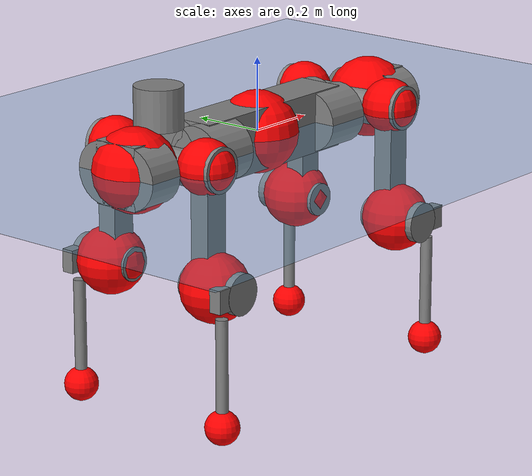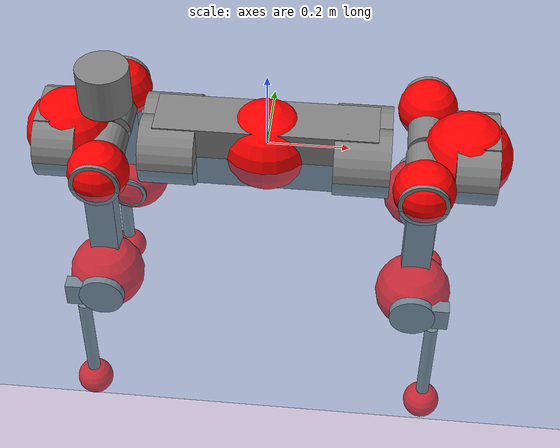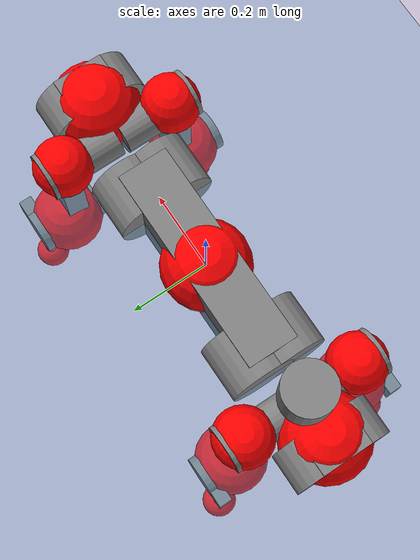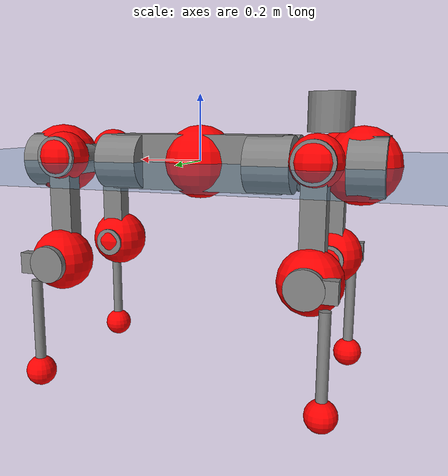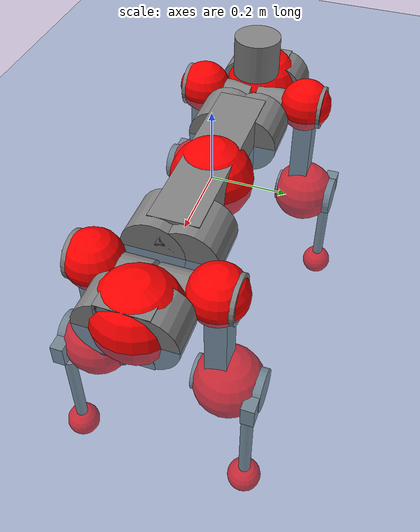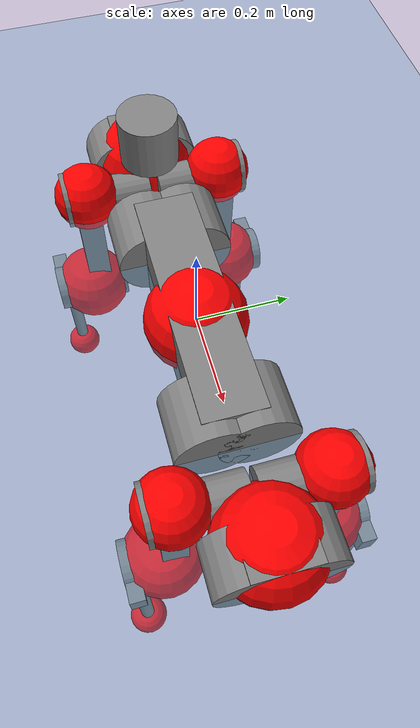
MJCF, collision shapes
<mujoco model="anymal_c">
  <compiler angle="radian" assetdir="assets" balanceinertia="true" inertiafromgeom="false"/>

  <option timestep="0.005" density="1.2" viscosity="2e-05"/>

  <size nkey="1"/>

  <visual>
    <quality shadowsize="8192"/>
    <map shadowclip="0.5"/>
  </visual>

  <default>
    <default class="/">
      <material specular="0" shininess="0.25"/>
      <geom contype="0" conaffinity="0" group="1" solref="-1000 -80"/>
      <site size="0.01 0.005 0.005" group="5"/>
      <general forcelimited="true" forcerange="-80 80" biastype="affine" gainprm="80" biasprm="0 -80 -2"/>
      <default class="anymal_c">
        <joint armature="0.01" damping="0.01" frictionloss="0.1"/>
        <default class="visual">
          <geom type="mesh" group="2"/>
          <default class="visual_zflip"/>
        </default>
        <default class="collision">
          <geom type="cylinder" group="3"/>
          <default class="foot">
            <geom size="0.03 0 0" type="sphere" condim="6" priority="1" friction="0.8 0.02 0.01" solimp="0.015 1 0.03"/>
          </default>
        </default>
      </default>
      <default class="reward_collision_sphere">
        <geom group="5" rgba="1 0 0 1"/>
      </default>
    </default>
  </default>

  <asset>
    <texture type="skybox" colorspace="auto" name="//unnamed_texture_0" builtin="gradient" rgb1="0.95 0.95 0.95" rgb2="0.95 0.95 0.95" width="100" height="600"/>
    <texture type="2d" colorspace="auto" name="texplane" builtin="checker" rgb1="0.345 0.575 0.748" rgb2="0.345 0.575 0.748" markrgb="1 1 1" width="512" height="512"/>
    <texture type="2d" colorspace="linear" name="base" file="base.png"/>
    <texture type="2d" colorspace="linear" name="top_shell" file="top_shell.png"/>
    <texture type="2d" colorspace="linear" name="bottom_shell" file="bottom_shell.png"/>
    <texture type="2d" colorspace="linear" name="remote" file="remote.png"/>
    <texture type="2d" colorspace="linear" name="hatch" file="hatch.png"/>
    <texture type="2d" colorspace="linear" name="handle" file="handle.png"/>
    <texture type="2d" colorspace="linear" name="face" file="face.png"/>
    <texture type="2d" colorspace="linear" name="battery" file="battery.png"/>
    <texture type="2d" colorspace="linear" name="lidar_cage" file="lidar_cage.png"/>
    <texture type="2d" colorspace="linear" name="depth_camera" file="depth_camera.png"/>
    <texture type="2d" colorspace="linear" name="wide_angle_camera" file="wide_angle_camera.png"/>
    <texture type="2d" colorspace="linear" name="lidar" file="lidar.png"/>
    <texture type="2d" colorspace="linear" name="drive" file="drive.png"/>
    <texture type="2d" colorspace="linear" name="hip_l" file="hip_l.png"/>
    <texture type="2d" colorspace="linear" name="shank_l" file="shank_l.png"/>
    <texture type="2d" colorspace="linear" name="foot" file="foot.png"/>
    <texture type="2d" colorspace="linear" name="thigh" file="thigh.png"/>
    <texture type="2d" colorspace="linear" name="shank_r" file="shank_r.png"/>
    <texture type="2d" colorspace="linear" name="hip_r" file="hip_r.png"/>
    <material name="MatPlane" class="/" texture="texplane" texuniform="true" texrepeat="2 2" specular="0.9" shininess="0.5"/>
    <material name="black_plastic" class="/" rgba="0.007 0.007 0.007 1"/>
    <material name="green" class="/" rgba="0.052 0.178 0.033 1"/>
    <material name="red" class="/" rgba="0.178 0.006 0.005 1"/>
    <material name="yellow" class="/" rgba="0.178 0.119 0.006 1"/>
    <material name="lwl" class="/" rgba="0.8 0.8 0.8 1"/>
    <material name="base" class="/" texture="base"/>
    <material name="top_shell" class="/" texture="top_shell"/>
    <material name="bottom_shell" class="/" texture="bottom_shell"/>
    <material name="hip_l" class="/" texture="hip_l"/>
    <material name="thigh" class="/" texture="thigh"/>
    <material name="shank_l" class="/" texture="shank_l"/>
    <material name="foot" class="/" texture="foot"/>
    <material name="hip_r" class="/" texture="hip_r"/>
    <material name="shank" class="/" texture="shank_r"/>
    <material name="hatch" class="/" texture="hatch"/>
    <material name="remote" class="/" texture="remote"/>
    <material name="handle" class="/" texture="handle"/>
    <material name="face" class="/" texture="face"/>
    <material name="depth_camera" class="/" texture="depth_camera"/>
    <material name="wide_angle_camera" class="/" texture="wide_angle_camera"/>
    <material name="battery" class="/" texture="battery"/>
    <material name="lidar_cage" class="/" texture="lidar_cage"/>
    <material name="lidar" class="/" texture="lidar"/>
    <material name="drive" class="/" texture="drive"/>
    <mesh name="base_0" class="/" file="base_0.obj"/>
    <mesh name="base_1" class="/" file="base_1.obj"/>
    <mesh name="base_2" class="/" file="base_2.obj"/>
    <mesh name="base_3" class="/" file="base_3.obj"/>
    <mesh name="base_4" class="/" file="base_4.obj"/>
    <mesh name="base_5" class="/" file="base_5.obj"/>
    <mesh name="top_shell" class="/" file="top_shell.obj"/>
    <mesh name="bottom_shell" class="/" file="bottom_shell.obj"/>
    <mesh name="remote" class="/" file="remote.obj"/>
    <mesh name="handle" class="/" file="handle.obj"/>
    <mesh name="face" class="/" file="face.obj"/>
    <mesh name="wide_angle_camera" class="/" file="wide_angle_camera.obj"/>
    <mesh name="depth_camera" class="/" file="depth_camera.obj"/>
    <mesh name="battery" class="/" file="battery.obj"/>
    <mesh name="lidar_cage" class="/" file="lidar_cage.obj"/>
    <mesh name="lidar" class="/" file="lidar.obj"/>
    <mesh name="drive" class="/" file="drive.obj"/>
    <mesh name="hip_l" class="/" file="hip_l.obj"/>
    <mesh name="thigh" class="/" file="thigh.obj"/>
    <mesh name="shank_l" class="/" file="shank_l.obj"/>
    <mesh name="foot" class="/" file="foot.obj"/>
    <mesh name="hip_r" class="/" file="hip_r.obj"/>
    <mesh name="hatch" class="/" file="hatch.obj"/>
    <mesh name="shank_r" class="/" file="shank_r.obj"/>
  </asset>

  <worldbody>
    <geom name="floor" class="/" size="100 100 0.125" type="plane" group="0" material="MatPlane"/>
    <light name="toplight_shadow" class="/" pos="0 0 5" dir="0.0990148 0.0990148 -0.990148" type="directional" ambient="0.04 0.04 0.04" diffuse="0.55 0.55 0.55" specular="0.12 0.12 0.12"/>
    <light name="toplight_fill" class="/" pos="0 0 5" dir="0.0990148 0.0990148 -0.990148" type="directional" castshadow="false" ambient="0.04 0.04 0.04" diffuse="0.3 0.3 0.3" specular="0.08 0.08 0.08"/>
    <body name="trunk" childclass="anymal_c" pos="-0.000456574 -0.000489599 -0.00222822" quat="1 4.60019e-05 -2.91435e-05 -3.79967e-06">
      <inertial pos="0.000878484 -0.000846803 0.0570799" quat="0.491817 0.505841 0.503956 0.498266" mass="15.8895" diaginertia="0.96245 0.0521299 0.369438"/>
      <joint name="//unnamed_joint_0" type="free" armature="0" damping="0" frictionloss="0"/>
      <geom name="//unnamed_geom_1" class="visual" material="green" mesh="base_0"/>
      <geom name="//unnamed_geom_2" class="visual" material="yellow" mesh="base_1"/>
      <geom name="//unnamed_geom_3" class="visual" material="red" mesh="base_2"/>
      <geom name="//unnamed_geom_4" class="visual" material="black_plastic" mesh="base_3"/>
      <geom name="//unnamed_geom_5" class="visual" material="lwl" mesh="base_4"/>
      <geom name="//unnamed_geom_6" class="visual" material="base" mesh="base_5"/>
      <geom name="trunk_1" class="collision" size="0.270038 0.0651815 0.0838048" type="box"/>
      <geom name="trunk_2" class="collision" size="0.0838048 0.0675094" pos="0.233899 0.0424727 0" quat="0.707107 0 0.707107 0"/>
      <geom name="trunk_3" class="collision" size="0.0838048 0.0675094" pos="-0.233899 0.0424727 0" quat="0.707107 0 0.707107 0"/>
      <geom name="trunk_4" class="collision" size="0.0838048 0.0675094" pos="0.233899 -0.0424727 0" quat="0.707107 0 0.707107 0"/>
      <geom name="trunk_5" class="collision" size="0.0838048 0.0675094" pos="-0.233899 -0.0424727 0" quat="0.707107 0 0.707107 0"/>
      <geom name="//unnamed_geom_12" class="visual" material="top_shell" mesh="top_shell"/>
      <geom name="//unnamed_geom_13" class="visual" material="bottom_shell" mesh="bottom_shell"/>
      <geom name="//unnamed_geom_14" class="visual" material="remote" mesh="remote"/>
      <geom name="//unnamed_geom_15" class="visual" material="handle" mesh="handle"/>
      <geom name="//unnamed_geom_16" class="visual" pos="0.445752 0 0" quat="1 0 0 0" material="face" mesh="face"/>
      <geom name="trunk_6" class="collision" size="0.051214 0.0651815 0.0838048" pos="0.504898 0 0" type="box"/>
      <geom name="//unnamed_geom_18" class="collision" size="0.0838048 0.051214" pos="0.504898 0.0424727 0" quat="0.707107 0 0.707107 0"/>
      <geom name="//unnamed_geom_19" class="collision" size="0.0838048 0.051214" pos="0.504898 -0.0424727 0" quat="0.707107 0 0.707107 0"/>
      <geom name="//unnamed_geom_20" class="visual" pos="0.496458 0 -0.0327244" quat="0.965926 0 0.258819 0" material="depth_camera" mesh="depth_camera"/>
      <geom name="//unnamed_geom_21" class="visual" pos="0.551678 0 0.0166368" material="wide_angle_camera" mesh="wide_angle_camera"/>
      <geom name="//unnamed_geom_22" class="visual_zflip" pos="-0.445752 0 0" quat="0 0 0 1" material="face" mesh="face"/>
      <geom name="trunk_7" class="collision" size="0.051214 0.0651815 0.0838048" pos="-0.504898 0 0" quat="0 0 0 1" type="box"/>
      <geom name="//unnamed_geom_24" class="collision" size="0.0838048 0.051214" pos="-0.504898 -0.0424727 0" quat="0 -0.707107 0 0.707107"/>
      <geom name="//unnamed_geom_25" class="collision" size="0.0838048 0.051214" pos="-0.504898 0.0424727 0" quat="0 -0.707107 0 0.707107"/>
      <geom name="//unnamed_geom_26" class="visual" pos="-0.496458 0 -0.0327244" quat="0 -0.258819 0 0.965926" material="depth_camera" mesh="depth_camera"/>
      <geom name="//unnamed_geom_27" class="visual_zflip" pos="-0.551678 0 0.0166368" quat="0 0 0 1" material="wide_angle_camera" mesh="wide_angle_camera"/>
      <geom name="//unnamed_geom_28" class="visual" material="battery" mesh="battery"/>
      <geom name="//unnamed_geom_29" class="visual" pos="0 0.0402442 0.0320113" quat="0.683013 -0.183013 0.183013 0.683013" material="depth_camera" mesh="depth_camera"/>
      <geom name="//unnamed_geom_30" class="visual" pos="0 -0.0402442 0.0320113" quat="0.683013 0.183013 0.183013 -0.683013" material="depth_camera" mesh="depth_camera"/>
      <geom name="//unnamed_geom_31" class="visual" pos="-0.391444 0 0.0816837" quat="1 0 0 0" material="lidar_cage" mesh="lidar_cage"/>
      <geom name="trunk_8" class="collision" size="0.0651815 0.0558698" pos="-0.391444 0 0.148364"/>
      <geom name="//unnamed_geom_33" class="visual" pos="-0.391444 -0.000184117 0.158033" quat="0.707107 0 0 -0.707107" material="lidar" mesh="lidar"/>
      <geom name="//unnamed_geom_34" class="visual" pos="0.322511 0.0632815 -8.70424e-09" quat="0.258819 0.965926 0 0" material="drive" mesh="drive"/>
      <geom name="//unnamed_geom_35" class="visual" pos="0.322511 -0.0632815 8.70424e-09" quat="0.258819 -0.965926 0 0" material="drive" mesh="drive"/>
      <geom name="//unnamed_geom_36" class="visual" pos="-0.322511 0.0632815 8.70424e-09" quat="0 0 0.965926 -0.258819" material="drive" mesh="drive"/>
      <geom name="//unnamed_geom_37" class="visual" pos="-0.322511 -0.0632815 -8.70424e-09" quat="0 0 -0.965926 -0.258819" material="drive" mesh="drive"/>
      <geom name="//unnamed_geom_38" class="visual" pos="0.124746 0 0.0811281" quat="1 0 0 0" material="hatch" mesh="hatch"/>
      <geom name="//unnamed_geom_39" class="reward_collision_sphere" size="0.11174"/>
      <geom name="//unnamed_geom_40" class="reward_collision_sphere" size="0.11174" pos="0.483928 0 0"/>
      <geom name="//unnamed_geom_41" class="reward_collision_sphere" size="0.11174" pos="-0.483928 0 0"/>
      <site name="imu" pos="0.270991 0.00337477 0.0555584" size="0.00931164"/>
      <camera name="track" pos="0 -1.21351 0" quat="0.707107 0.707107 0 0" mode="trackcom"/>
      <camera name="ego_camera" pos="0.483928 0 -0.0444537" quat="-0.5 -0.5 0.5 0.5"/>
      <body name="LF_HIP" pos="0.323705 0.061843 4.40968e-05" quat="0.25752 0.966273 0.000103074 0.000569796">
        <inertial pos="0.0616217 -0.0117961 -0.00818713" quat="-0.118483 0.71666 -0.136597 0.673573" mass="2.26059" diaginertia="0.00850966 0.000412391 0.00581794"/>
        <joint name="LF_HAA" pos="0 0 0" axis="0.999938 -0.00592945 0.00947146" range="-0.704837 0.542263" armature="0.00930701" damping="0.0115934" frictionloss="0.0883389"/>
        <geom name="//unnamed_geom_42" class="visual" pos="0 -0.000512031 8.41007e-05" quat="0.258819 -0.965926 0 0" material="hip_l" mesh="hip_l"/>
        <geom name="//unnamed_geom_43" class="visual" pos="0.0644162 -0.0720628 -0.0453377" quat="0.183013 -0.683013 0.683013 0.183013" material="drive" mesh="drive"/>
        <geom name="//unnamed_geom_44" class="collision" size="0.0465582 0.0651815" pos="0.0644162 -0.00725664 -0.00767383" quat="-0.353553 -0.612372 0.612372 -0.353553"/>
        <body name="LF_THIGH" pos="0.0652234 -0.0454778 -0.0462052" quat="0.183531 -0.682844 0.683024 0.183082">
          <inertial pos="0.0362769 -0.000496543 -0.27254" quat="0.99359 0.00404461 -0.0763947 0.0832267" mass="2.53249" diaginertia="0.0428149 0.00243076 0.0069412"/>
          <joint name="LF_HFE" pos="0 0 0" axis="0.999999 -0.00117578 -0.000275046" stiffness="0.00871119" range="-3.18618 3.16013" armature="0.00962392" damping="0" frictionloss="0.0892948"/>
          <geom name="//unnamed_geom_45" class="visual" pos="0.00932416 1.46927e-05 0" quat="0.707107 0 0 -0.707107" material="thigh" mesh="thigh"/>
          <geom name="//unnamed_geom_46" class="collision" size="0.0605257 0.0372466" pos="0.0430158 0 0" quat="0.5 0.5 -0.5 -0.5"/>
          <geom name="//unnamed_geom_47" class="collision" size="0.0349187 0.0279349 0.131587" pos="0.0322619 0 -0.157048" quat="0.707107 0 0 -0.707107" type="box"/>
          <geom name="//unnamed_geom_48" class="visual" pos="0.107862 0 -0.316733" quat="1 0 0 0" material="drive" mesh="drive"/>
          <geom name="//unnamed_geom_49" class="collision" size="0.0465582 0.0651815" pos="0.0325845 0 -0.316733" quat="0.707107 0 0.707107 0"/>
          <geom name="//unnamed_geom_50" class="reward_collision_sphere" size="0.0744931" pos="0.0268849 0 0"/>
          <body name="LF_SHANK" pos="0.109696 -0.00160819 -0.316266" quat="1 -0.000564866 0.00050993 -0.000135378">
            <inertial pos="0.00439379 -0.0370119 -0.0913589" quat="0.992521 -0.119137 0.00771928 -0.0254705" mass="0.464434" diaginertia="0.0140955 0.000759295 0.00179936"/>
            <joint name="LF_KFE" pos="0 0 0" axis="0.999937 0.0101499 -0.00478535" range="-3.18764 3.1901" armature="0.0106023" damping="0.00186482" frictionloss="0.10478"/>
            <geom name="//unnamed_geom_51" class="visual" pos="0.0030404 0.0162116 0" quat="0.707107 0 0 -0.707107" material="shank_l" mesh="shank_l"/>
            <geom name="LF_kfe_act" class="collision" size="0.0558698 0.0186233" pos="0.0215079 0 0" quat="0.5 0.5 -0.5 -0.5"/>
            <geom name="//unnamed_geom_53" class="collision" size="0.053541 0.0314268 0.0176921" pos="0.0215079 -0.0348877 0" quat="0.5 0.5 -0.5 -0.5" type="box"/>
            <geom name="//unnamed_geom_54" class="visual" pos="0.0140332 -0.0481396 -0.375601" quat="0.382683 0 0 -0.92388" material="foot" mesh="foot"/>
            <geom name="LF_calf" class="collision" size="0.0162954 0.131529" pos="0.0140339 -0.0533639 -0.1878" quat="0.707107 0 0 -0.707107"/>
            <geom name="LF_foot" class="foot" size="0.0248776" pos="0.0140339 -0.0533639 -0.350595" quat="0.707107 0 0 -0.707107"/>
            <geom name="//unnamed_geom_57" class="reward_collision_sphere" size="0.0931164" pos="-0.0537698 0 0"/>
            <geom name="//unnamed_geom_58" class="reward_collision_sphere" size="0.0465582" pos="0.0140339 -0.0533639 -0.350595"/>
            <site name="LF_foot" class="foot" pos="0.0140339 -0.0533639 -0.350595" quat="0.707107 0 0 -0.707107" size="0.00931164"/>
          </body>
        </body>
      </body>
      <body name="RF_HIP" pos="0.320542 -0.0617644 -0.00113834" quat="0.259195 -0.965825 0.000829583 0.00065335">
        <inertial pos="0.0619608 0.010217 -0.00997297" quat="0.136516 0.679847 0.125256 0.709565" mass="2.26347" diaginertia="0.008393 0.000431521 0.00576637"/>
        <joint name="RF_HAA" pos="0 0 0" axis="0.999889 -0.00850483 -0.012219" range="-0.50154 0.734924" armature="0.00895326" damping="0.0124168" frictionloss="0.0896725"/>
        <geom name="//unnamed_geom_59" class="visual" pos="0 0.000512027 8.41005e-05" quat="0.258819 0.965926 0 0" material="hip_r" mesh="hip_r"/>
        <geom name="//unnamed_geom_60" class="visual" pos="0.0644162 0.0720628 -0.0453377" quat="0.183013 0.683013 0.683013 -0.183013" material="drive" mesh="drive"/>
        <geom name="//unnamed_geom_61" class="collision" size="0.0465582 0.0651815" pos="0.0644162 0.00725664 -0.00767383" quat="-0.353553 0.612372 0.612372 0.353553"/>
        <body name="RF_THIGH" pos="0.0620464 0.0440062 -0.0494057" quat="0.183791 0.682817 0.682797 -0.183763">
          <inertial pos="0.0328041 0.000558038 -0.272481" quat="0.992309 -0.00877485 -0.0833645 0.0910802" mass="2.42106" diaginertia="0.0423246 0.00247789 0.00717591"/>
          <joint name="RF_HFE" pos="0 0 0" axis="0.999993 -0.000658022 -0.00360974" stiffness="0.00891848" range="-3.15349 3.18847" armature="0.0094529" damping="0" frictionloss="0.0863205"/>
          <geom name="//unnamed_geom_62" class="visual" pos="0.00932416 1.46927e-05 0" quat="0.707107 0 0 -0.707107" material="thigh" mesh="thigh"/>
          <geom name="//unnamed_geom_63" class="collision" size="0.0605257 0.0372466" pos="0.0430158 0 0" quat="0.5 0.5 0.5 0.5"/>
          <geom name="//unnamed_geom_64" class="collision" size="0.0349187 0.0279349 0.131587" pos="0.0322619 0 -0.157048" quat="0.707107 0 0 0.707107" type="box"/>
          <geom name="//unnamed_geom_65" class="visual" pos="0.107862 0 -0.316733" quat="1 0 0 0" material="drive" mesh="drive"/>
          <geom name="//unnamed_geom_66" class="collision" size="0.0465582 0.0651815" pos="0.0325845 0 -0.316733" quat="0.707107 0 0.707107 0"/>
          <geom name="//unnamed_geom_67" class="reward_collision_sphere" size="0.0744931" pos="0.0268849 0 0"/>
          <body name="RF_SHANK" pos="0.107972 3.91874e-06 -0.313648" quat="1 0.000315351 -6.16951e-05 -0.00035327">
            <inertial pos="0.00632742 0.0381154 -0.0892539" quat="0.99131 0.128961 -0.00329272 0.0257386" mass="0.469821" diaginertia="0.0146423 0.000741884 0.00186849"/>
            <joint name="RF_KFE" pos="0 0 0" axis="0.999856 0.0145198 -0.00878048" range="-3.18866 3.18683" armature="0.00824508" damping="0.00835317" frictionloss="0.0942072"/>
            <geom name="//unnamed_geom_68" class="visual" pos="0.00304039 -0.0162116 0" quat="0.707107 0 0 0.707107" material="shank" mesh="shank_r"/>
            <geom name="RF_kfe_act" class="collision" size="0.0558698 0.0186233" pos="0.0215079 0 0" quat="0.5 0.5 0.5 0.5"/>
            <geom name="//unnamed_geom_70" class="collision" size="0.053541 0.0314268 0.0176921" pos="0.0215079 0.0348877 0" quat="0.5 0.5 0.5 0.5" type="box"/>
            <geom name="//unnamed_geom_71" class="visual" pos="0.0140347 0.0481396 -0.375601" quat="0.382683 0 0 0.92388" material="foot" mesh="foot"/>
            <geom name="RF_calf" class="collision" size="0.0162954 0.131529" pos="0.0140339 0.0533639 -0.1878" quat="0.707107 0 0 0.707107"/>
            <geom name="RF_foot" class="foot" size="0.0295681" pos="0.0140339 0.0533639 -0.350595" quat="0.707107 0 0 0.707107"/>
            <geom name="//unnamed_geom_74" class="reward_collision_sphere" size="0.0931164" pos="-0.0537698 0 0"/>
            <geom name="//unnamed_geom_75" class="reward_collision_sphere" size="0.0465582" pos="0.0140339 0.0533639 -0.350595"/>
            <site name="RF_foot" class="foot" pos="0.0140339 0.0533639 -0.350595" quat="0.707107 0 0 0.707107" size="0.00931164"/>
          </body>
        </body>
      </body>
      <body name="LH_HIP" pos="-0.321915 0.0661077 -0.00040879" quat="-0.000720418 -0.000599722 0.965785 -0.259343">
        <inertial pos="0.0638474 0.00962319 -0.0102343" quat="0.137421 0.674401 0.117652 0.715861" mass="2.26582" diaginertia="0.00804689 0.000397154 0.00544104"/>
        <joint name="LH_HAA" pos="0 0 0" axis="0.999895 0.0133778 0.0056036" range="-0.44326 0.750843" armature="0.00896924" damping="0" frictionloss="0.0977466"/>
        <geom name="//unnamed_geom_76" class="visual" pos="0 0.000512027 8.41005e-05" quat="-0.258819 -0.965926 0 0" material="hip_r" mesh="hip_r"/>
        <geom name="//unnamed_geom_77" class="visual" pos="0.0644162 0.0720628 -0.0453377" quat="0.183013 0.683013 0.683013 -0.183013" material="drive" mesh="drive"/>
        <geom name="//unnamed_geom_78" class="collision" size="0.0465582 0.0651815" pos="0.0644162 0.00725664 -0.00767383" quat="-0.353553 0.612372 0.612372 0.353553"/>
        <body name="LH_THIGH" pos="0.0615529 0.0452479 -0.0490423" quat="0.183068 0.683089 0.682918 -0.183025">
          <inertial pos="0.0331249 0.00142732 -0.273404" quat="0.99245 -0.00415228 -0.0829838 0.0902234" mass="2.4867" diaginertia="0.0434681 0.00237777 0.00728926"/>
          <joint name="LH_HFE" pos="0 0 0" axis="0.999984 -0.0055808 -0.000174895" stiffness="0.00874923" range="-3.13977 3.14261" armature="0.00800687" damping="0" frictionloss="0.104913"/>
          <geom name="//unnamed_geom_79" class="visual" pos="0.00932416 1.46927e-05 0" quat="0.707107 0 0 -0.707107" material="thigh" mesh="thigh"/>
          <geom name="//unnamed_geom_80" class="collision" size="0.0605257 0.0372466" pos="0.0430158 0 0" quat="0.5 0.5 -0.5 -0.5"/>
          <geom name="//unnamed_geom_81" class="collision" size="0.0349187 0.0279349 0.131587" pos="0.0322619 0 -0.157048" quat="0.707107 0 0 -0.707107" type="box"/>
          <geom name="//unnamed_geom_82" class="visual" pos="0.107862 0 -0.316733" quat="1 0 0 0" material="drive" mesh="drive"/>
          <geom name="//unnamed_geom_83" class="collision" size="0.0465582 0.0651815" pos="0.0325845 0 -0.316733" quat="0.707107 0 0.707107 0"/>
          <geom name="//unnamed_geom_84" class="reward_collision_sphere" size="0.0744931" pos="0.0268849 0 0"/>
          <body name="LH_SHANK" pos="0.105333 -0.001131 -0.31981" quat="0.999999 -0.000408795 0.000394573 -0.0014044">
            <inertial pos="0.00593249 0.0373837 -0.0892195" quat="0.992377 0.121257 0.00104823 0.0219971" mass="0.475352" diaginertia="0.0144787 0.000760555 0.00191603"/>
            <joint name="LH_KFE" pos="0 0 0" axis="0.999914 0.0130378 0.00156708" range="-3.13892 3.13441" armature="0.00856218" damping="0.0142482" frictionloss="0.104398"/>
            <geom name="//unnamed_geom_85" class="visual" pos="0.00304039 -0.0162116 0" quat="-0.707107 0 0 -0.707107" material="shank" mesh="shank_r"/>
            <geom name="LH_kfe_act" class="collision" size="0.0558698 0.0186233" pos="0.0215079 0 0" quat="0.5 0.5 -0.5 -0.5"/>
            <geom name="//unnamed_geom_87" class="collision" size="0.053541 0.0314268 0.0176921" pos="0.0215079 0.0348877 0" quat="0.5 0.5 -0.5 -0.5" type="box"/>
            <geom name="//unnamed_geom_88" class="visual" pos="0.0140347 0.0481396 -0.375601" quat="-0.382683 0 0 -0.92388" material="foot" mesh="foot"/>
            <geom name="LH_calf" class="collision" size="0.0162954 0.131529" pos="0.0140339 0.0533639 -0.1878" quat="0.707107 0 0 -0.707107"/>
            <geom name="LH_foot" class="foot" size="0.0266303" pos="0.0140339 0.0533639 -0.350595" quat="0.707107 0 0 -0.707107"/>
            <geom name="//unnamed_geom_91" class="reward_collision_sphere" size="0.0931164" pos="-0.0537698 0 0"/>
            <geom name="//unnamed_geom_92" class="reward_collision_sphere" size="0.0465582" pos="0.0140339 0.0533639 -0.350595"/>
            <site name="LH_foot" class="foot" pos="0.0140339 0.0533639 -0.350595" quat="0.707107 0 0 -0.707107" size="0.00931164"/>
          </body>
        </body>
      </body>
      <body name="RH_HIP" pos="-0.323309 -0.0641475 -0.00211911" quat="-0.000623404 3.74139e-05 -0.966012 -0.258495">
        <inertial pos="0.0606191 -0.00872438 -0.00831531" quat="-0.133482 0.703389 -0.137065 0.684572" mass="2.15938" diaginertia="0.00812347 0.000391728 0.00540202"/>
        <joint name="RH_HAA" pos="0 0 0" axis="1 -3.6356e-05 -0.000669221" range="-0.746975 0.481645" armature="0.00920875" damping="0" frictionloss="0.0945028"/>
        <geom name="//unnamed_geom_93" class="visual" pos="0 -0.000512031 8.41007e-05" quat="-0.258819 0.965926 0 0" material="hip_l" mesh="hip_l"/>
        <geom name="//unnamed_geom_94" class="visual" pos="0.0644162 -0.0720628 -0.0453377" quat="-0.183013 0.683013 -0.683013 -0.183013" material="drive" mesh="drive"/>
        <geom name="//unnamed_geom_95" class="collision" size="0.0465582 0.0651815" pos="0.0644162 -0.00725664 -0.00767383" quat="0.353553 0.612372 -0.612372 0.353553"/>
        <body name="RH_THIGH" pos="0.0636901 -0.0472526 -0.0470242" quat="-0.182872 0.682545 -0.683403 -0.183442">
          <inertial pos="0.0355699 -0.00178949 -0.272135" quat="0.993132 -0.00445013 -0.0816958 0.0836292" mass="2.5252" diaginertia="0.0434965 0.00246175 0.00732291"/>
          <joint name="RH_HFE" pos="0 0 0" axis="0.999994 0.000175639 -0.00356103" range="-3.15551 3.15047" armature="0.00802864" damping="0" frictionloss="0.0937381"/>
          <geom name="//unnamed_geom_96" class="visual" pos="0.00932416 1.46927e-05 0" quat="0.707107 0 0 -0.707107" material="thigh" mesh="thigh"/>
          <geom name="//unnamed_geom_97" class="collision" size="0.0605257 0.0372466" pos="0.0430158 0 0" quat="0.5 0.5 0.5 0.5"/>
          <geom name="//unnamed_geom_98" class="collision" size="0.0349187 0.0279349 0.131587" pos="0.0322619 0 -0.157048" quat="0.707107 0 0 0.707107" type="box"/>
          <geom name="//unnamed_geom_99" class="visual" pos="0.107862 0 -0.316733" quat="1 0 0 0" material="drive" mesh="drive"/>
          <geom name="//unnamed_geom_100" class="collision" size="0.0465582 0.0651815" pos="0.0325845 0 -0.316733" quat="0.707107 0 0.707107 0"/>
          <geom name="//unnamed_geom_101" class="reward_collision_sphere" size="0.0744931" pos="0.0268849 0 0"/>
          <body name="RH_SHANK" pos="0.107675 -0.00100328 -0.314235" quat="0.999999 -0.000420043 -0.000455319 0.00128077">
            <inertial pos="0.00341897 -0.0370939 -0.09048" quat="0.992475 -0.118515 -0.00310945 -0.0306274" mass="0.471312" diaginertia="0.0140128 0.000766705 0.00185933"/>
            <joint name="RH_KFE" pos="0 0 0" axis="0.999996 -0.00280639 -0.000432315" stiffness="0.00500942" range="-3.13451 3.08847" armature="0.00945321" damping="0.0177026" frictionloss="0.0930834"/>
            <geom name="//unnamed_geom_102" class="visual" pos="0.0030404 0.0162116 0" quat="0.707107 0 0 -0.707107" material="shank_l" mesh="shank_l"/>
            <geom name="RH_kfe_act" class="collision" size="0.0558698 0.0186233" pos="0.0215079 0 0" quat="0.5 0.5 0.5 0.5"/>
            <geom name="//unnamed_geom_104" class="collision" size="0.053541 0.0314268 0.0176921" pos="0.0215079 -0.0348877 0" quat="0.5 0.5 0.5 0.5" type="box"/>
            <geom name="//unnamed_geom_105" class="visual" pos="0.0140332 -0.0481396 -0.375601" quat="0.382683 0 0 -0.92388" material="foot" mesh="foot"/>
            <geom name="RH_calf" class="collision" size="0.0162954 0.131529" pos="0.0140339 -0.0533639 -0.1878" quat="0.707107 0 0 0.707107"/>
            <geom name="RH_foot" class="foot" size="0.0247392" pos="0.0140339 -0.0533639 -0.350595" quat="0.707107 0 0 0.707107"/>
            <geom name="//unnamed_geom_108" class="reward_collision_sphere" size="0.0931164" pos="-0.0537698 0 0"/>
            <geom name="//unnamed_geom_109" class="reward_collision_sphere" size="0.0465582" pos="0.0140339 -0.0533639 -0.350595"/>
            <site name="RH_foot" class="foot" pos="0.0140339 -0.0533639 -0.350595" quat="0.707107 0 0 0.707107" size="0.00931164"/>
          </body>
        </body>
      </body>
    </body>
  </worldbody>

  <contact>
    <pair class="/" geom1="floor" geom2="LF_foot" name="//unnamed_contact_0"/>
    <pair class="/" geom1="floor" geom2="RF_foot" name="//unnamed_contact_1"/>
    <pair class="/" geom1="floor" geom2="LH_foot" name="//unnamed_contact_2"/>
    <pair class="/" geom1="floor" geom2="RH_foot" name="//unnamed_contact_3"/>
  </contact>

  <actuator>
    <general name="LF_HAA" class="/" joint="LF_HAA" forcerange="-74.1826 74.1826" gainprm="66.4371" biasprm="0 -66.4371 -1.74406"/>
    <general name="LF_HFE" class="/" joint="LF_HFE" forcerange="-66.9615 66.9615" gainprm="66.4371" biasprm="0 -66.4371 -1.74406"/>
    <general name="LF_KFE" class="/" joint="LF_KFE" forcerange="-71.4614 71.4614" gainprm="66.4371" biasprm="0 -66.4371 -1.74406"/>
    <general name="RF_HAA" class="/" joint="RF_HAA" forcerange="-68.1816 68.1816" gainprm="66.4371" biasprm="0 -66.4371 -1.74406"/>
    <general name="RF_HFE" class="/" joint="RF_HFE" forcerange="-84.4354 84.4354" gainprm="66.4371" biasprm="0 -66.4371 -1.74406"/>
    <general name="RF_KFE" class="/" joint="RF_KFE" forcerange="-71.8483 71.8483" gainprm="66.4371" biasprm="0 -66.4371 -1.74406"/>
    <general name="LH_HAA" class="/" joint="LH_HAA" forcerange="-74.5212 74.5212" gainprm="66.4371" biasprm="0 -66.4371 -1.74406"/>
    <general name="LH_HFE" class="/" joint="LH_HFE" forcerange="-72.1776 72.1776" gainprm="66.4371" biasprm="0 -66.4371 -1.74406"/>
    <general name="LH_KFE" class="/" joint="LH_KFE" forcerange="-73.4916 73.4916" gainprm="66.4371" biasprm="0 -66.4371 -1.74406"/>
    <general name="RH_HAA" class="/" joint="RH_HAA" forcerange="-68.8796 68.8796" gainprm="66.4371" biasprm="0 -66.4371 -1.74406"/>
    <general name="RH_HFE" class="/" joint="RH_HFE" forcerange="-75.3996 75.3996" gainprm="66.4371" biasprm="0 -66.4371 -1.74406"/>
    <general name="RH_KFE" class="/" joint="RH_KFE" forcerange="-78.5493 78.5493" gainprm="66.4371" biasprm="0 -66.4371 -1.74406"/>
  </actuator>

  <sensor>
    <gyro site="imu" name="imu_angular_velocity"/>
    <velocimeter site="imu" name="imu_linear_velocity"/>
    <framelinvel objtype="site" objname="LF_foot" name="LF_foot_global_linear_velocity"/>
    <framelinvel objtype="site" objname="RF_foot" name="RF_foot_global_linear_velocity"/>
    <framelinvel objtype="site" objname="LH_foot" name="LH_foot_global_linear_velocity"/>
    <framelinvel objtype="site" objname="RH_foot" name="RH_foot_global_linear_velocity"/>
  </sensor>

  <keyframe>
    <key name="home" qpos="0 0 0.55 1 0 0 0 0 0.4 -0.8 0 -0.4 0.8 0 -0.4 0.8 0 0.4 -0.8"/>
  </keyframe>
</mujoco>
